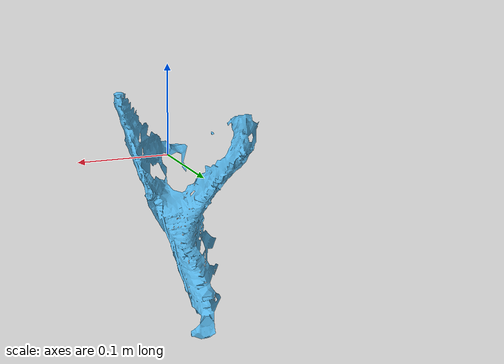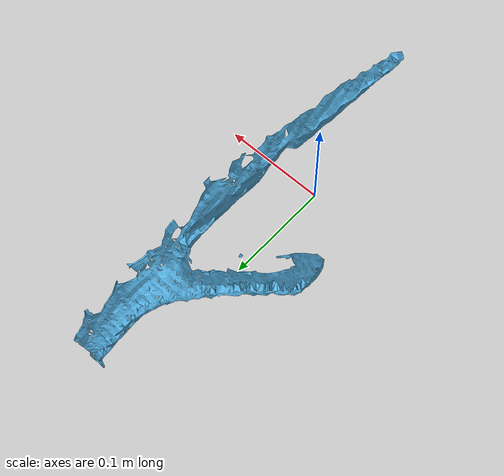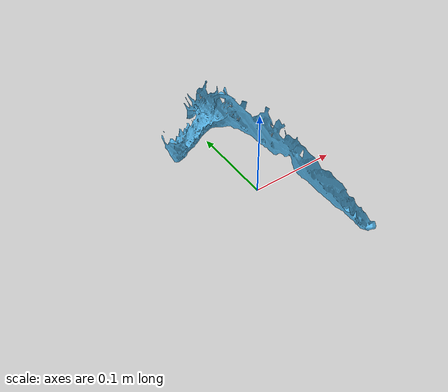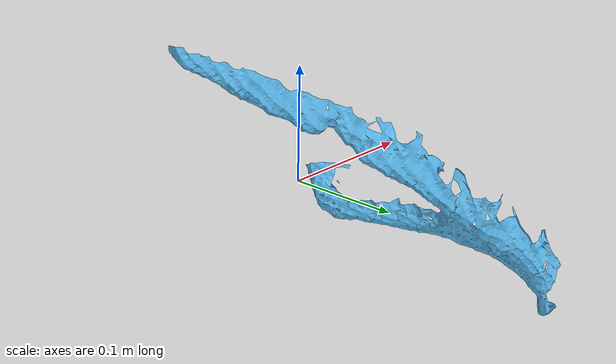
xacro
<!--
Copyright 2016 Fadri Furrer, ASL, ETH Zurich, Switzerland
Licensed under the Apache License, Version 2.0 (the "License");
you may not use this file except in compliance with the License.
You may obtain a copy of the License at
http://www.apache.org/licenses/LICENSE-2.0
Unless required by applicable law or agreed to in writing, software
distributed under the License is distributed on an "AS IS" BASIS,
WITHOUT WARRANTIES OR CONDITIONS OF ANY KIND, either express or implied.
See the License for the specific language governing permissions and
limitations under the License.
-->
<?xml version="1.0"?>

<robot name="branch_1" xmlns:xacro="http://ros.org/wiki/xacro">
<xacro:property name="mesh_file" value="package://urdf_models/models/branch_1/mesh/branch_1.stl" />
  <xacro:property name="mass" value="1.0" />
  <link name="base_link"></link>

  <joint name="base_joint" type="fixed">
    <origin xyz="0 0 0" rpy="0 0 0" />
    <parent link="base_link" />
    <child link="base_link_inertia" />
  </joint>
  <link name="base_link_inertia">
  <inertial>
    <mass value="${mass}" />  <!-- [kg] -->
    <origin xyz="0 0 0" />
    <inertia ixx="0.023458e-02" ixy="-0.002390e-02" ixz="0.004260e-02"
                                iyy="0.030342e-02"  iyz="0.002545e-02"
                                                    izz="0.033413e-02" />
   </inertial>

      <visual>
        <origin xyz="0 0 0" rpy="0 0 0" />
        <geometry>
          <mesh filename="${mesh_file}" scale="1 1 1" />
        </geometry>
      </visual>

      <collision>
        <origin xyz="0 0 0" rpy="0 0 0" />
        <geometry>
          <mesh filename="${mesh_file}" scale="1 1 1" />
        </geometry>
      </collision>
    </link>

    <gazebo reference="base_link">
        <mu1 value="2.2"/>
        <mu2 value="1.1"/>
        <kp  value="5000000.0" />
        <kd  value="1.0" />
        <fdir1 value="1 0 0"/>
        <collision>
            <surface>
              <bounce>
                <restitution_coefficient> 0.1 </restitution_coefficient>
                <threshold>0.</threshold>
              </bounce>
            <contact>
                <ode>
                  <max_vel>0.1</max_vel>
                  <min_depth>0.001</min_depth>
                </ode>
            </contact>
            </surface>
       </collision>
        <material name="Gray">
        <color rgba="0.8 0.8 0.8 1"/>
      </material>
        <turnGravityOff>false</turnGravityOff>
    </gazebo>

</robot>
